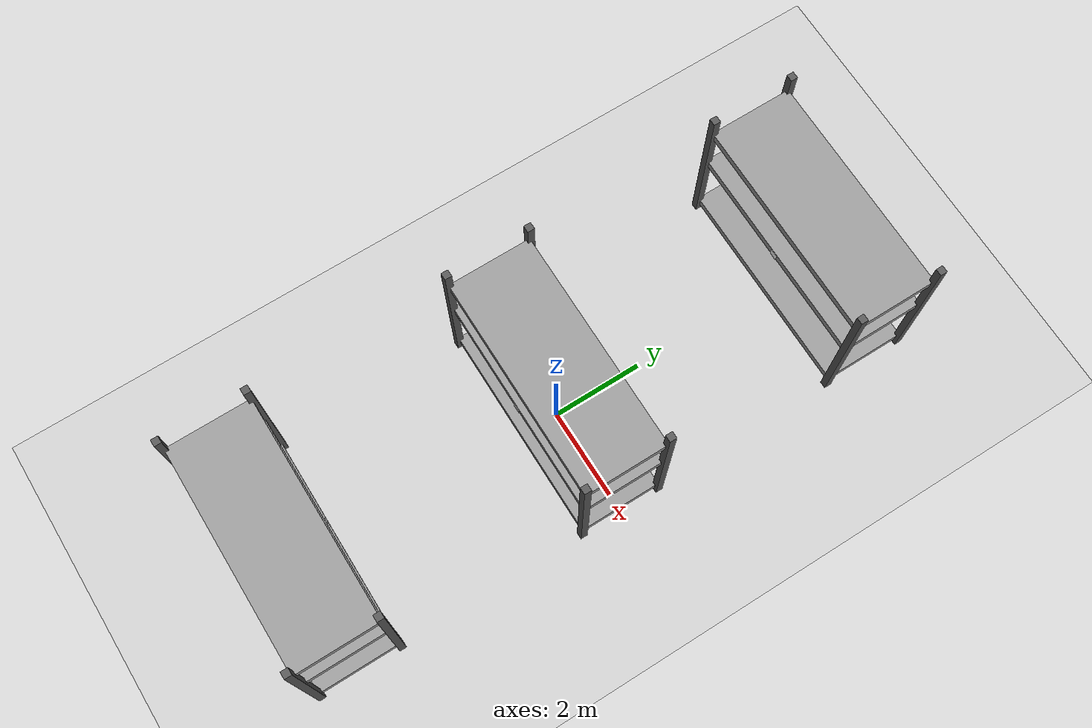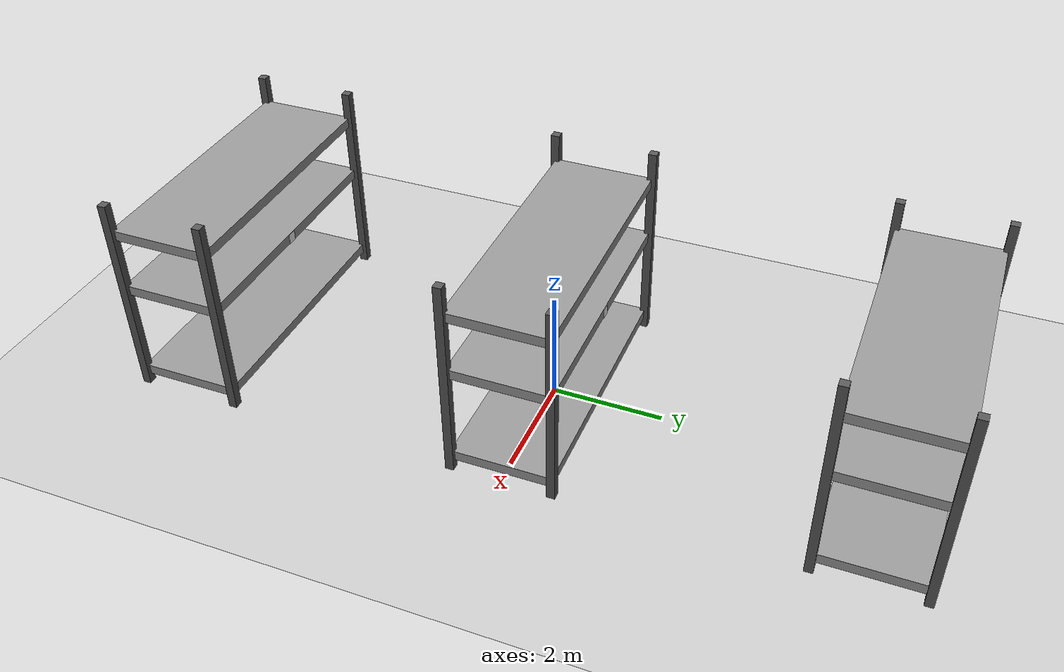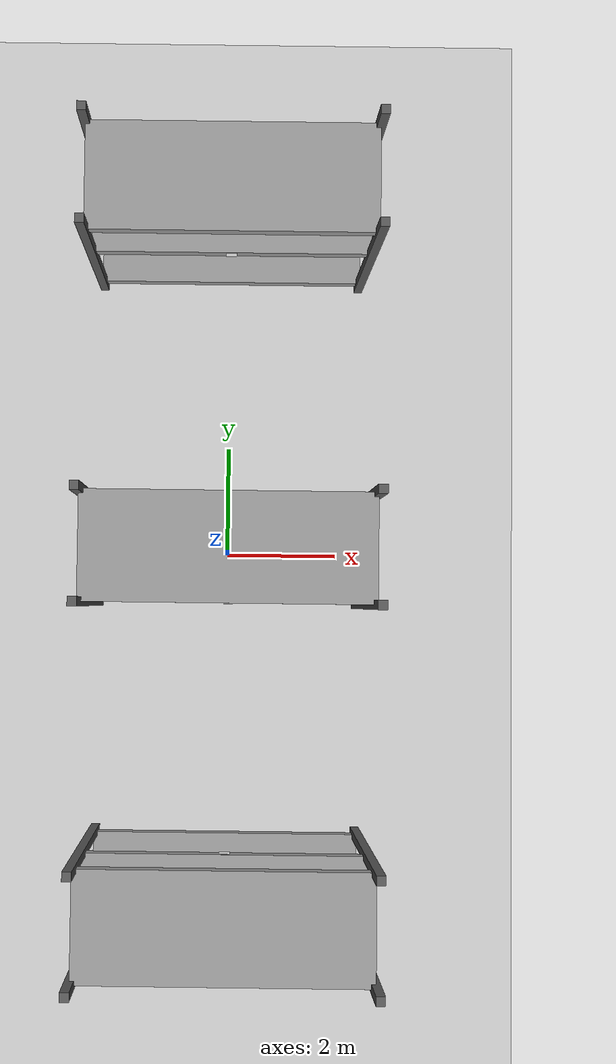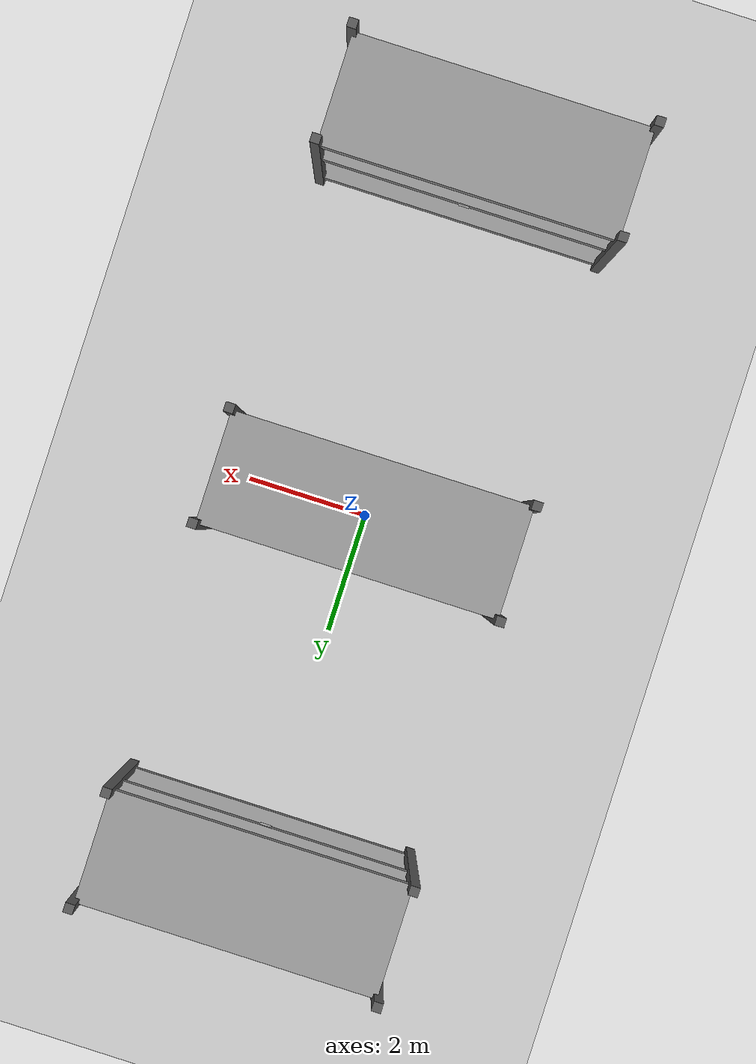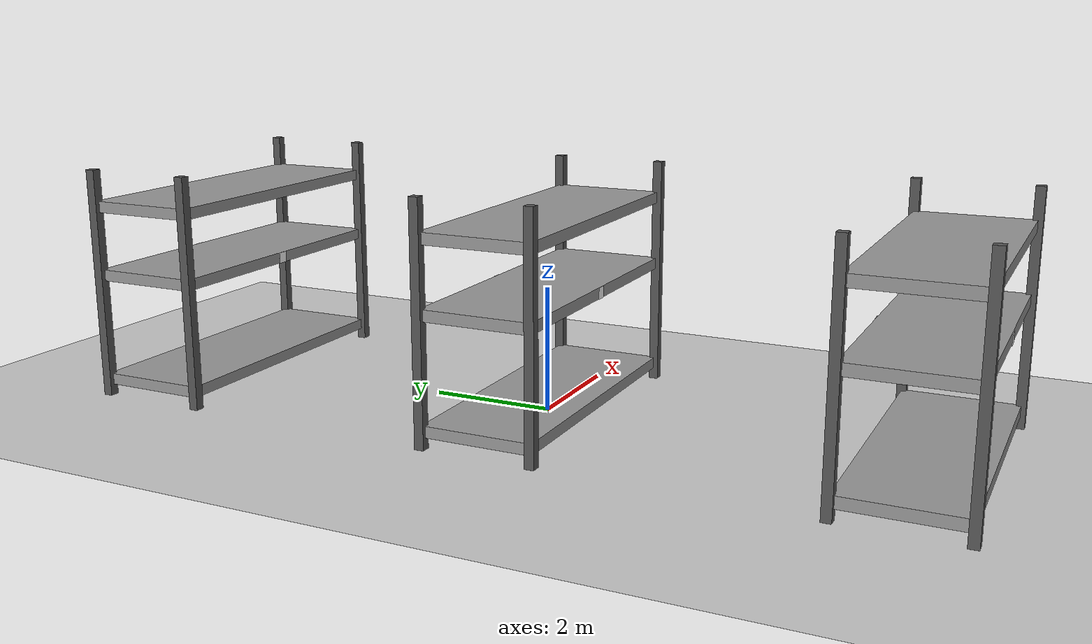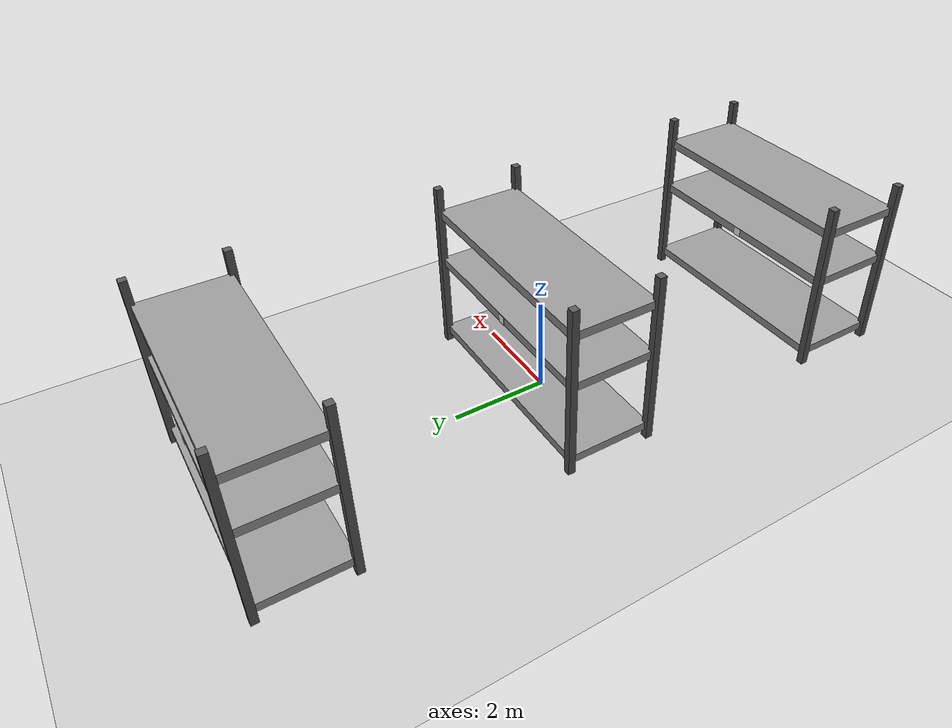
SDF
<sdf version="1.10">
 <world name="warehouse_env">
  <gravity>0 0 -9.8100000000000005</gravity>
  <physics name="1ms" type="ignored">
   <max_step_size>0.001</max_step_size>
   <real_time_factor>1</real_time_factor>
   <real_time_update_rate>1000</real_time_update_rate>
  </physics>
  <plugin name="gz::sim::systems::Physics" filename="gz-sim-physics-system"/>
  <plugin name="gz::sim::systems::UserCommands" filename="gz-sim-user-commands-system"/>
  <plugin name="gz::sim::systems::SceneBroadcaster" filename="gz-sim-scene-broadcaster-system"/>
  <plugin name="gz::sim::systems::Imu" filename="gz-sim-imu-system"/>
  <plugin name="gz::sim::systems::Contact" filename="gz-sim-contact-system"/>
  <plugin name="gz::sim::systems::Sensors" filename="gz-sim-sensors-system">
   <render_engine>ogre2</render_engine>
  </plugin>
  <magnetic_field>5.5644999999999998e-06 2.2875799999999999e-05 -4.2388400000000002e-05</magnetic_field>
  <atmosphere type="adiabatic"/>
  <scene>
   <ambient>0.400000006 0.400000006 0.400000006 1</ambient>
   <background>0.699999988 0.699999988 0.699999988 1</background>
   <shadows>true</shadows>
  </scene>
  <model name="ground_plane">
   <static>true</static>
   <link name="link">
    <collision name="collision">
     <geometry><plane><normal>0 0 1</normal><size>1 1</size></plane></geometry>
    </collision>
    <visual name="visual">
     <geometry><plane><normal>0 0 1</normal><size>100 100</size></plane></geometry>
     <material>
      <ambient>0.800000012 0.800000012 0.800000012 1</ambient>
      <diffuse>0.800000012 0.800000012 0.800000012 1</diffuse>
      <specular>0.800000012 0.800000012 0.800000012 1</specular>
     </material>
    </visual>
    <inertial>
     <mass>1</mass>
     <inertia><ixx>1</ixx><ixy>0</ixy><ixz>0</ixz><iyy>1</iyy><iyz>0</iyz><izz>1</izz></inertia>
    </inertial>
   </link>
  </model>
  <light name="sun" type="directional">
   <pose>0 0 10 0 0 0</pose>
   <intensity>1</intensity>
   <direction>-0.5 0.1 -0.9</direction>
   <diffuse>0.8 0.8 0.8 1</diffuse>
   <specular>0.2 0.2 0.2 1</specular>
   <attenuation>
    <range>1000</range>
    <linear>0.01</linear>
    <constant>0.9</constant>
    <quadratic>0.001</quadratic>
   </attenuation>
   <spot><inner_angle>0</inner_angle><outer_angle>0</outer_angle><falloff>0</falloff></spot>
  </light>
  <include><uri>model://empty_shelf</uri><name>empty_shelf_row1_c</name><pose>0 -6 0 0 0 0</pose></include>
  <include><uri>model://empty_shelf</uri><name>empty_shelf_row2_c</name></include>
  <include><uri>model://empty_shelf</uri><name>empty_shelf_row3_c</name><pose>0 6 0 0 0 0</pose></include>
  <include>
   <uri>model://aruco_visual_marker_3</uri>
   <name>aruco_marker3_front</name>
   <pose>0 -5.09 2.025 0 0 0</pose>
  </include>
  <include>
   <uri>model://aruco_visual_marker_3</uri>
   <name>aruco_marker3_back</name>
   <pose>0 -6.91 2.025 0 0 3.1416</pose>
  </include>
  <include>
   <uri>model://aruco_visual_marker_4</uri>
   <name>aruco_marker4_front</name>
   <pose>0 0.91 2.025 0 0 0</pose>
  </include>
  <include>
   <uri>model://aruco_visual_marker_4</uri>
   <name>aruco_marker4_back</name>
   <pose>0 -0.91 2.025 0 0 3.1416</pose>
  </include>
  <include>
   <uri>model://aruco_visual_marker_5</uri>
   <name>aruco_marker5_front</name>
   <pose>0 6.91 2.025 0 0 0</pose>
  </include>
  <include>
   <uri>model://aruco_visual_marker_5</uri>
   <name>aruco_marker5_back</name>
   <pose>0 5.09 2.025 0 0 3.1416</pose>
  </include>
 </world>
</sdf>

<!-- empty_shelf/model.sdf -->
<sdf version="1.10">
  <model name="empty_shelf">
    <static>true</static>
    <pose>0 0 0 0 0 0</pose>
    <!-- 창고형 선반: 기본 크기 1.5배 (길이 4.8m, 깊이 1.8m, 높이 3.75m) -->

    <!-- 기둥 4개 -->
    <link name="post_fl">
      <pose>2.4 0.9 1.875 0 0 0</pose>
      <visual name="vis">
        <geometry><box><size>0.15 0.15 3.75</size></box></geometry>
        <material><ambient>0.25 0.25 0.25 1</ambient><diffuse>0.35 0.35 0.35 1</diffuse></material>
      </visual>
      <collision name="col"><geometry><box><size>0.15 0.15 3.75</size></box></geometry></collision>
    </link>
    <link name="post_fr">
      <pose>2.4 -0.9 1.875 0 0 0</pose>
      <visual name="vis">
        <geometry><box><size>0.15 0.15 3.75</size></box></geometry>
        <material><ambient>0.25 0.25 0.25 1</ambient><diffuse>0.35 0.35 0.35 1</diffuse></material>
      </visual>
      <collision name="col"><geometry><box><size>0.15 0.15 3.75</size></box></geometry></collision>
    </link>
    <link name="post_rl">
      <pose>-2.4 0.9 1.875 0 0 0</pose>
      <visual name="vis">
        <geometry><box><size>0.15 0.15 3.75</size></box></geometry>
        <material><ambient>0.25 0.25 0.25 1</ambient><diffuse>0.35 0.35 0.35 1</diffuse></material>
      </visual>
      <collision name="col"><geometry><box><size>0.15 0.15 3.75</size></box></geometry></collision>
    </link>
    <link name="post_rr">
      <pose>-2.4 -0.9 1.875 0 0 0</pose>
      <visual name="vis">
        <geometry><box><size>0.15 0.15 3.75</size></box></geometry>
        <material><ambient>0.25 0.25 0.25 1</ambient><diffuse>0.35 0.35 0.35 1</diffuse></material>
      </visual>
      <collision name="col"><geometry><box><size>0.15 0.15 3.75</size></box></geometry></collision>
    </link>

    <!-- 선반 판 3개 (두께 0.18m) -->
    <link name="shelf_bottom">
      <pose>0 0 0.27 0 0 0</pose>
      <visual name="vis">
        <geometry><box><size>4.8 1.8 0.18</size></box></geometry>
        <material><ambient>0.45 0.45 0.45 1</ambient><diffuse>0.6 0.6 0.6 1</diffuse></material>
      </visual>
      <collision name="col"><geometry><box><size>4.8 1.8 0.18</size></box></geometry></collision>
    </link>
    <link name="shelf_mid">
      <pose>0 0 2.025 0 0 0</pose>
      <visual name="vis">
        <geometry><box><size>4.8 1.8 0.18</size></box></geometry>
        <material><ambient>0.45 0.45 0.45 1</ambient><diffuse>0.6 0.6 0.6 1</diffuse></material>
      </visual>
      <collision name="col"><geometry><box><size>4.8 1.8 0.18</size></box></geometry></collision>
    </link>
    <link name="shelf_top">
      <pose>0 0 3.15 0 0 0</pose>
      <visual name="vis">
        <geometry><box><size>4.8 1.8 0.18</size></box></geometry>
        <material><ambient>0.45 0.45 0.45 1</ambient><diffuse>0.6 0.6 0.6 1</diffuse></material>
      </visual>
      <collision name="col"><geometry><box><size>4.8 1.8 0.18</size></box></geometry></collision>
    </link>

  </model>
</sdf>

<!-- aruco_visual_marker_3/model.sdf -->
<sdf version="1.7">
  <model name="aruco_visual_marker_3">
    <static>true</static>
    <link name="marker">
      <pose>0 0 0 0 0 0</pose>
      <collision name="collision">
        <geometry>
          <box>
            <size>0.18 0.005 0.18</size>
          </box>
        </geometry>
      </collision>
      <visual name="visual">
        <geometry>
          <box>
            <size>0.18 0.005 0.18</size>
          </box>
        </geometry>
        <material>
          <ambient>1 1 1 1</ambient>
          <diffuse>1 1 1 1</diffuse>
          <specular>0 0 0 1</specular>
          <emissive>0 0 0 1</emissive>
          <double_sided>true</double_sided>
          <pbr>
            <metal>
              <metalness>0.0</metalness>
              <roughness>0.6</roughness>
              <albedo_map>model://aruco_visual_marker_3/materials/textures/aruco_mark_3.png</albedo_map>
            </metal>
          </pbr>
        </material>
      </visual>
    </link>
  </model>
</sdf>

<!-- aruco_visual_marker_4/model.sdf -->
<sdf version="1.7">
  <model name="aruco_visual_marker_4">
    <static>true</static>
    <link name="marker">
      <pose>0 0 0 0 0 0</pose>
      <collision name="collision">
        <geometry>
          <box>
            <size>0.18 0.005 0.18</size>
          </box>
        </geometry>
      </collision>
      <visual name="visual">
        <geometry>
          <box>
            <size>0.18 0.005 0.18</size>
          </box>
        </geometry>
        <material>
          <ambient>1 1 1 1</ambient>
          <diffuse>1 1 1 1</diffuse>
          <specular>0 0 0 1</specular>
          <emissive>0 0 0 1</emissive>
          <double_sided>true</double_sided>
          <pbr>
            <metal>
              <metalness>0.0</metalness>
              <roughness>0.6</roughness>
              <albedo_map>model://aruco_visual_marker_4/materials/textures/aruco_mark_4.png</albedo_map>
            </metal>
          </pbr>
        </material>
      </visual>
    </link>
  </model>
</sdf>

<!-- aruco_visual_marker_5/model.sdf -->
<sdf version="1.7">
  <model name="aruco_visual_marker_5">
    <static>true</static>
    <link name="marker">
      <pose>0 0 0 0 0 0</pose>
      <collision name="collision">
        <geometry>
          <box>
            <size>0.18 0.005 0.18</size>
          </box>
        </geometry>
      </collision>
      <visual name="visual">
        <geometry>
          <box>
            <size>0.18 0.005 0.18</size>
          </box>
        </geometry>
        <material>
          <ambient>1 1 1 1</ambient>
          <diffuse>1 1 1 1</diffuse>
          <specular>0 0 0 1</specular>
          <emissive>0 0 0 1</emissive>
          <double_sided>true</double_sided>
          <pbr>
            <metal>
              <metalness>0.0</metalness>
              <roughness>0.6</roughness>
              <albedo_map>model://aruco_visual_marker_5/materials/textures/aruco_mark_5.png</albedo_map>
            </metal>
          </pbr>
        </material>
      </visual>
    </link>
  </model>
</sdf>
